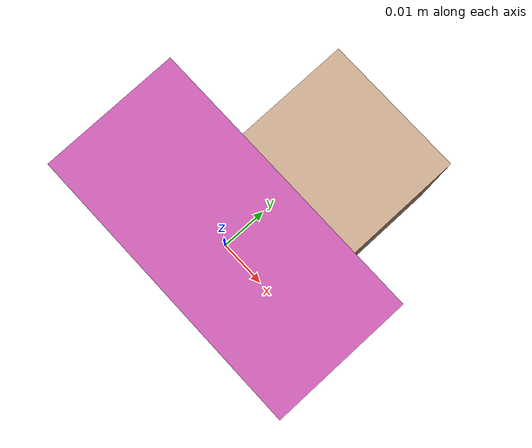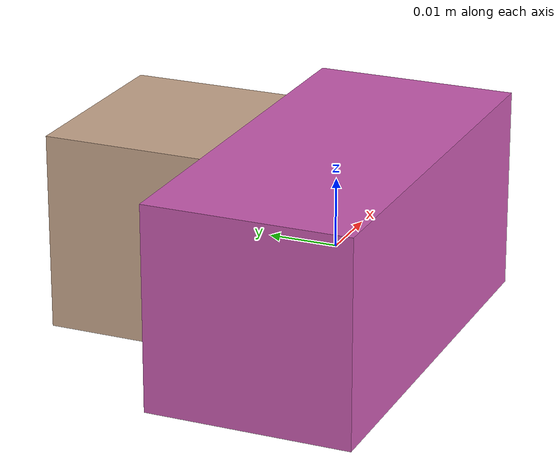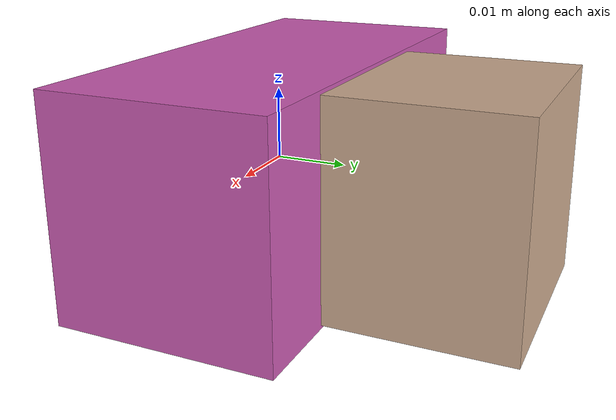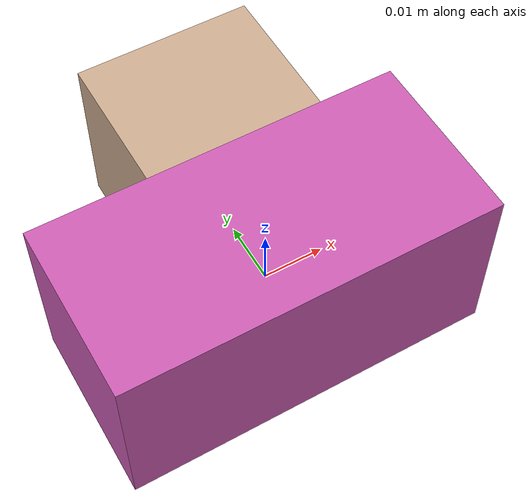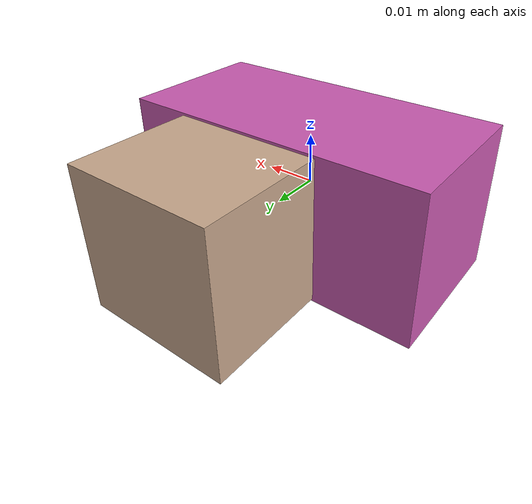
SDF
<sdf version="1.4"><world name="default"><model name="object0"><link name="link1"><pose>0 0 0 0 0 0</pose><inertial><pose>0 0 0 0 0 0</pose><mass>0.03366994929494924</mass><inertia><ixx>5.0504923942423864e-06</ixx><ixy>0</ixy><iyy>1.3433585078877697e-05</iyy><ixz>0</ixz><iyz>0</iyz><izz>1.3433585078877697e-05</izz></inertia></inertial><visual name="link1_visual"><pose>0 0  0 0 0 0</pose><geometry><box><size>0.06235175795360972 0.03 0.03</size></box></geometry><material><diffuse>0.7988086021734417 0.35974084268888007 0.700024714321801 1</diffuse></material></visual><collision><pose>0 0  0 0 0 0</pose><geometry><box><size>0.06235175795360972 0.03 0.03</size></box></geometry></collision></link><link name="link2"><pose>0.003626514552471278 0.02418187973289532 0 0 0 0</pose><inertial><pose>0 0 0 0 0 0</pose><mass>0.01644551945518944</mass><inertia><ixx>2.4236401482192976e-06</ixx><ixy>0</ixy><iyy>2.3859707809570676e-06</iyy><ixz>0</ixz><iyz>0</iyz><izz>2.5044972855406456e-06</izz></inertia></inertial><visual name="link2_visual"><pose>0 0  0 0 0 0</pose><geometry><box><size>0.03 0.03045466565775823 0.028999999999999998</size></box></geometry><material><diffuse>0.7956102286766938 0.6660011857968466 0.5598314163434753 1</diffuse></material></visual><collision><pose>0 0  0 0 0 0</pose><geometry><box><size>0.03 0.03045466565775823 0.028999999999999998</size></box></geometry></collision></link><joint name="link_joint_0" type="fixed"><parent>link1</parent><child>link2</child><pose>0 0 0 0 0 0</pose><axis><xyz>0 0 1</xyz></axis></joint></model></world></sdf>
